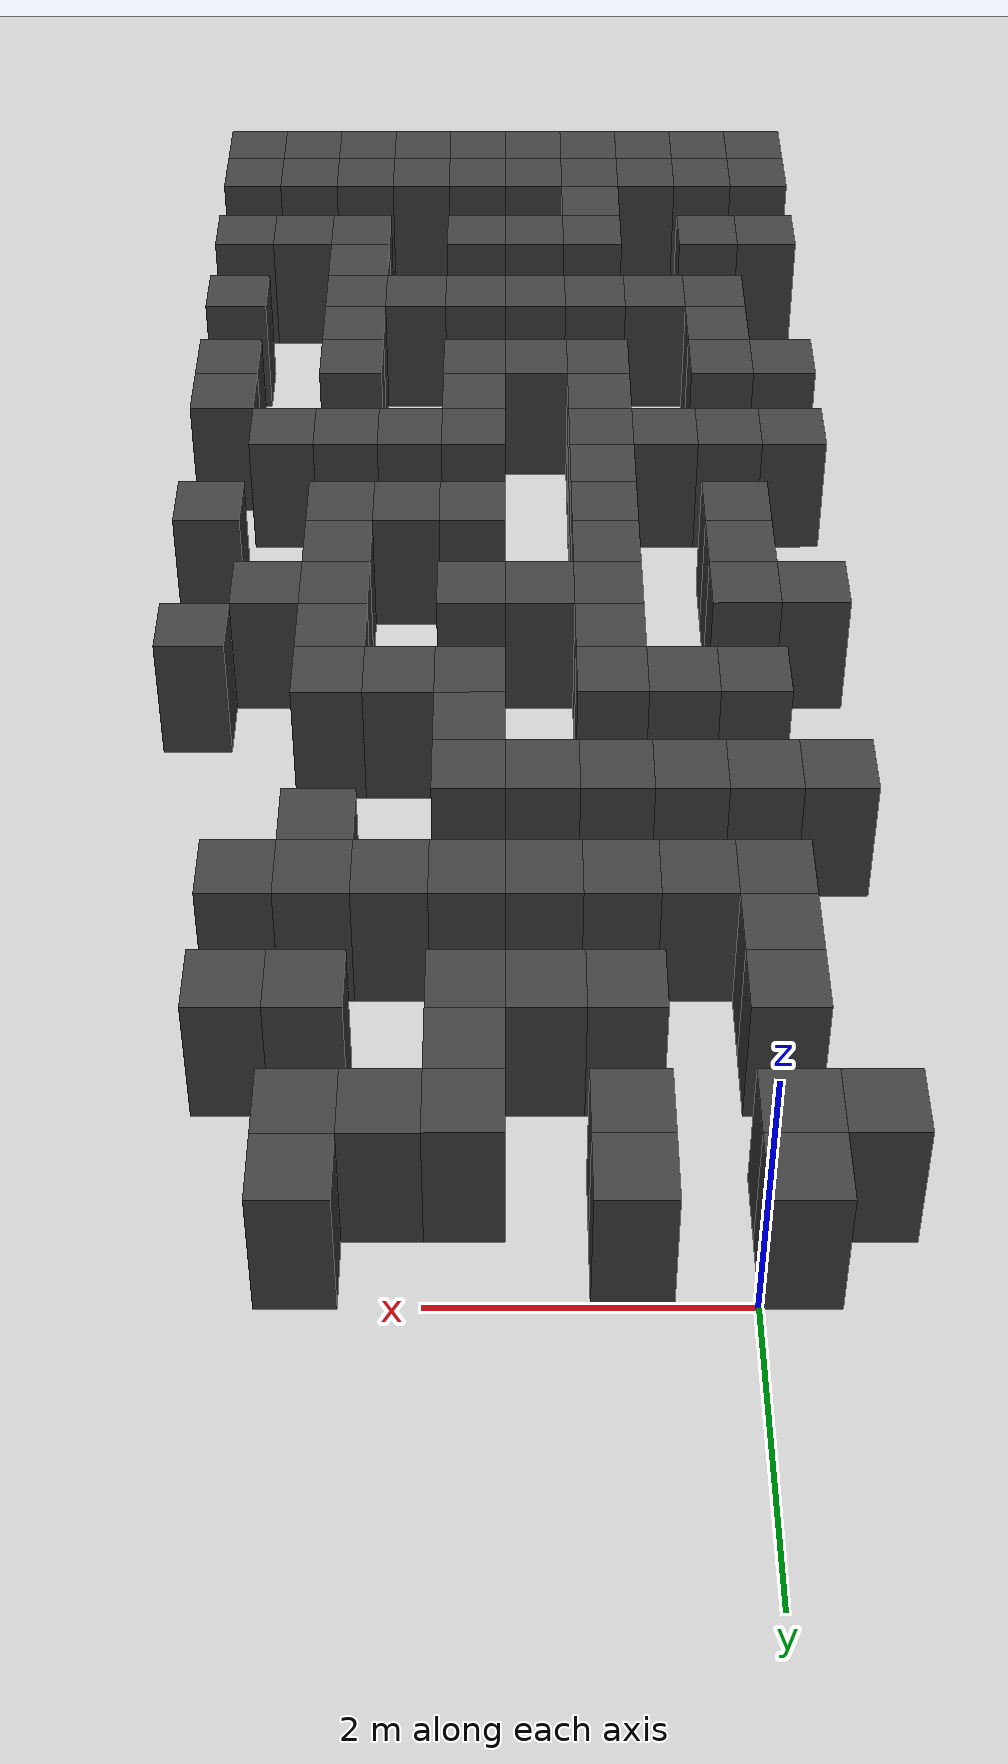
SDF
<sdf version="1.7">
 <world name="map_18228">
  <model name="ground_plane">
   <static>true</static>
   <link name="link">
    <collision name="collision">
     <geometry><plane><normal>0 0 1</normal><size>200 200</size></plane></geometry>
    </collision>
    <visual name="visual">
     <geometry><plane><normal>0 0 1</normal><size>200 200</size></plane></geometry>
     <material><ambient>0.8 0.8 0.8 1</ambient><diffuse>0.8 0.8 0.8 1</diffuse></material>
    </visual>
   </link>
  </model>
  <model name="maze_environment">
   <static>true</static>
   <link name="wall_643">
    <pose>-0.250 -0.250 0.500 0 0 0</pose>
    <collision name="col"><geometry><box><size>0.5 0.5 1.0</size></box></geometry></collision>
    <visual name="vis">
     <geometry><box><size>0.5 0.5 1.0</size></box></geometry>
     <material><ambient>0.15 0.15 0.15 1</ambient><diffuse>0.25 0.25 0.25 1</diffuse></material>
    </visual>
   </link>
   <link name="wall_644">
    <pose>0.750 -0.250 0.500 0 0 0</pose>
    <collision name="col"><geometry><box><size>0.5 0.5 1.0</size></box></geometry></collision>
    <visual name="vis">
     <geometry><box><size>0.5 0.5 1.0</size></box></geometry>
     <material><ambient>0.15 0.15 0.15 1</ambient><diffuse>0.25 0.25 0.25 1</diffuse></material>
    </visual>
   </link>
   <link name="wall_645">
    <pose>2.750 -0.250 0.500 0 0 0</pose>
    <collision name="col"><geometry><box><size>0.5 0.5 1.0</size></box></geometry></collision>
    <visual name="vis">
     <geometry><box><size>0.5 0.5 1.0</size></box></geometry>
     <material><ambient>0.15 0.15 0.15 1</ambient><diffuse>0.25 0.25 0.25 1</diffuse></material>
    </visual>
   </link>
   <link name="wall_668">
    <pose>-0.750 -0.750 0.500 0 0 0</pose>
    <collision name="col"><geometry><box><size>0.5 0.5 1.0</size></box></geometry></collision>
    <visual name="vis">
     <geometry><box><size>0.5 0.5 1.0</size></box></geometry>
     <material><ambient>0.15 0.15 0.15 1</ambient><diffuse>0.25 0.25 0.25 1</diffuse></material>
    </visual>
   </link>
   <link name="wall_669">
    <pose>-0.250 -0.750 0.500 0 0 0</pose>
    <collision name="col"><geometry><box><size>0.5 0.5 1.0</size></box></geometry></collision>
    <visual name="vis">
     <geometry><box><size>0.5 0.5 1.0</size></box></geometry>
     <material><ambient>0.15 0.15 0.15 1</ambient><diffuse>0.25 0.25 0.25 1</diffuse></material>
    </visual>
   </link>
   <link name="wall_670">
    <pose>0.750 -0.750 0.500 0 0 0</pose>
    <collision name="col"><geometry><box><size>0.5 0.5 1.0</size></box></geometry></collision>
    <visual name="vis">
     <geometry><box><size>0.5 0.5 1.0</size></box></geometry>
     <material><ambient>0.15 0.15 0.15 1</ambient><diffuse>0.25 0.25 0.25 1</diffuse></material>
    </visual>
   </link>
   <link name="wall_671">
    <pose>1.750 -0.750 0.500 0 0 0</pose>
    <collision name="col"><geometry><box><size>0.5 0.5 1.0</size></box></geometry></collision>
    <visual name="vis">
     <geometry><box><size>0.5 0.5 1.0</size></box></geometry>
     <material><ambient>0.15 0.15 0.15 1</ambient><diffuse>0.25 0.25 0.25 1</diffuse></material>
    </visual>
   </link>
   <link name="wall_672">
    <pose>2.250 -0.750 0.500 0 0 0</pose>
    <collision name="col"><geometry><box><size>0.5 0.5 1.0</size></box></geometry></collision>
    <visual name="vis">
     <geometry><box><size>0.5 0.5 1.0</size></box></geometry>
     <material><ambient>0.15 0.15 0.15 1</ambient><diffuse>0.25 0.25 0.25 1</diffuse></material>
    </visual>
   </link>
   <link name="wall_673">
    <pose>2.750 -0.750 0.500 0 0 0</pose>
    <collision name="col"><geometry><box><size>0.5 0.5 1.0</size></box></geometry></collision>
    <visual name="vis">
     <geometry><box><size>0.5 0.5 1.0</size></box></geometry>
     <material><ambient>0.15 0.15 0.15 1</ambient><diffuse>0.25 0.25 0.25 1</diffuse></material>
    </visual>
   </link>
   <link name="wall_693">
    <pose>1.750 -1.250 0.500 0 0 0</pose>
    <collision name="col"><geometry><box><size>0.5 0.5 1.0</size></box></geometry></collision>
    <visual name="vis">
     <geometry><box><size>0.5 0.5 1.0</size></box></geometry>
     <material><ambient>0.15 0.15 0.15 1</ambient><diffuse>0.25 0.25 0.25 1</diffuse></material>
    </visual>
   </link>
   <link name="wall_716">
    <pose>-0.250 -1.750 0.500 0 0 0</pose>
    <collision name="col"><geometry><box><size>0.5 0.5 1.0</size></box></geometry></collision>
    <visual name="vis">
     <geometry><box><size>0.5 0.5 1.0</size></box></geometry>
     <material><ambient>0.15 0.15 0.15 1</ambient><diffuse>0.25 0.25 0.25 1</diffuse></material>
    </visual>
   </link>
   <link name="wall_717">
    <pose>0.750 -1.750 0.500 0 0 0</pose>
    <collision name="col"><geometry><box><size>0.5 0.5 1.0</size></box></geometry></collision>
    <visual name="vis">
     <geometry><box><size>0.5 0.5 1.0</size></box></geometry>
     <material><ambient>0.15 0.15 0.15 1</ambient><diffuse>0.25 0.25 0.25 1</diffuse></material>
    </visual>
   </link>
   <link name="wall_718">
    <pose>1.250 -1.750 0.500 0 0 0</pose>
    <collision name="col"><geometry><box><size>0.5 0.5 1.0</size></box></geometry></collision>
    <visual name="vis">
     <geometry><box><size>0.5 0.5 1.0</size></box></geometry>
     <material><ambient>0.15 0.15 0.15 1</ambient><diffuse>0.25 0.25 0.25 1</diffuse></material>
    </visual>
   </link>
   <link name="wall_719">
    <pose>1.750 -1.750 0.500 0 0 0</pose>
    <collision name="col"><geometry><box><size>0.5 0.5 1.0</size></box></geometry></collision>
    <visual name="vis">
     <geometry><box><size>0.5 0.5 1.0</size></box></geometry>
     <material><ambient>0.15 0.15 0.15 1</ambient><diffuse>0.25 0.25 0.25 1</diffuse></material>
    </visual>
   </link>
   <link name="wall_720">
    <pose>2.750 -1.750 0.500 0 0 0</pose>
    <collision name="col"><geometry><box><size>0.5 0.5 1.0</size></box></geometry></collision>
    <visual name="vis">
     <geometry><box><size>0.5 0.5 1.0</size></box></geometry>
     <material><ambient>0.15 0.15 0.15 1</ambient><diffuse>0.25 0.25 0.25 1</diffuse></material>
    </visual>
   </link>
   <link name="wall_721">
    <pose>3.250 -1.750 0.500 0 0 0</pose>
    <collision name="col"><geometry><box><size>0.5 0.5 1.0</size></box></geometry></collision>
    <visual name="vis">
     <geometry><box><size>0.5 0.5 1.0</size></box></geometry>
     <material><ambient>0.15 0.15 0.15 1</ambient><diffuse>0.25 0.25 0.25 1</diffuse></material>
    </visual>
   </link>
   <link name="wall_746">
    <pose>-0.250 -2.250 0.500 0 0 0</pose>
    <collision name="col"><geometry><box><size>0.5 0.5 1.0</size></box></geometry></collision>
    <visual name="vis">
     <geometry><box><size>0.5 0.5 1.0</size></box></geometry>
     <material><ambient>0.15 0.15 0.15 1</ambient><diffuse>0.25 0.25 0.25 1</diffuse></material>
    </visual>
   </link>
   <link name="wall_765">
    <pose>-0.250 -2.750 0.500 0 0 0</pose>
    <collision name="col"><geometry><box><size>0.5 0.5 1.0</size></box></geometry></collision>
    <visual name="vis">
     <geometry><box><size>0.5 0.5 1.0</size></box></geometry>
     <material><ambient>0.15 0.15 0.15 1</ambient><diffuse>0.25 0.25 0.25 1</diffuse></material>
    </visual>
   </link>
   <link name="wall_766">
    <pose>0.250 -2.750 0.500 0 0 0</pose>
    <collision name="col"><geometry><box><size>0.5 0.5 1.0</size></box></geometry></collision>
    <visual name="vis">
     <geometry><box><size>0.5 0.5 1.0</size></box></geometry>
     <material><ambient>0.15 0.15 0.15 1</ambient><diffuse>0.25 0.25 0.25 1</diffuse></material>
    </visual>
   </link>
   <link name="wall_767">
    <pose>0.750 -2.750 0.500 0 0 0</pose>
    <collision name="col"><geometry><box><size>0.5 0.5 1.0</size></box></geometry></collision>
    <visual name="vis">
     <geometry><box><size>0.5 0.5 1.0</size></box></geometry>
     <material><ambient>0.15 0.15 0.15 1</ambient><diffuse>0.25 0.25 0.25 1</diffuse></material>
    </visual>
   </link>
   <link name="wall_768">
    <pose>1.250 -2.750 0.500 0 0 0</pose>
    <collision name="col"><geometry><box><size>0.5 0.5 1.0</size></box></geometry></collision>
    <visual name="vis">
     <geometry><box><size>0.5 0.5 1.0</size></box></geometry>
     <material><ambient>0.15 0.15 0.15 1</ambient><diffuse>0.25 0.25 0.25 1</diffuse></material>
    </visual>
   </link>
   <link name="wall_769">
    <pose>1.750 -2.750 0.500 0 0 0</pose>
    <collision name="col"><geometry><box><size>0.5 0.5 1.0</size></box></geometry></collision>
    <visual name="vis">
     <geometry><box><size>0.5 0.5 1.0</size></box></geometry>
     <material><ambient>0.15 0.15 0.15 1</ambient><diffuse>0.25 0.25 0.25 1</diffuse></material>
    </visual>
   </link>
   <link name="wall_770">
    <pose>2.250 -2.750 0.500 0 0 0</pose>
    <collision name="col"><geometry><box><size>0.5 0.5 1.0</size></box></geometry></collision>
    <visual name="vis">
     <geometry><box><size>0.5 0.5 1.0</size></box></geometry>
     <material><ambient>0.15 0.15 0.15 1</ambient><diffuse>0.25 0.25 0.25 1</diffuse></material>
    </visual>
   </link>
   <link name="wall_771">
    <pose>2.750 -2.750 0.500 0 0 0</pose>
    <collision name="col"><geometry><box><size>0.5 0.5 1.0</size></box></geometry></collision>
    <visual name="vis">
     <geometry><box><size>0.5 0.5 1.0</size></box></geometry>
     <material><ambient>0.15 0.15 0.15 1</ambient><diffuse>0.25 0.25 0.25 1</diffuse></material>
    </visual>
   </link>
   <link name="wall_772">
    <pose>3.250 -2.750 0.500 0 0 0</pose>
    <collision name="col"><geometry><box><size>0.5 0.5 1.0</size></box></geometry></collision>
    <visual name="vis">
     <geometry><box><size>0.5 0.5 1.0</size></box></geometry>
     <material><ambient>0.15 0.15 0.15 1</ambient><diffuse>0.25 0.25 0.25 1</diffuse></material>
    </visual>
   </link>
   <link name="wall_790">
    <pose>2.750 -3.250 0.500 0 0 0</pose>
    <collision name="col"><geometry><box><size>0.5 0.5 1.0</size></box></geometry></collision>
    <visual name="vis">
     <geometry><box><size>0.5 0.5 1.0</size></box></geometry>
     <material><ambient>0.15 0.15 0.15 1</ambient><diffuse>0.25 0.25 0.25 1</diffuse></material>
    </visual>
   </link>
   <link name="wall_814">
    <pose>-0.750 -3.750 0.500 0 0 0</pose>
    <collision name="col"><geometry><box><size>0.5 0.5 1.0</size></box></geometry></collision>
    <visual name="vis">
     <geometry><box><size>0.5 0.5 1.0</size></box></geometry>
     <material><ambient>0.15 0.15 0.15 1</ambient><diffuse>0.25 0.25 0.25 1</diffuse></material>
    </visual>
   </link>
   <link name="wall_815">
    <pose>-0.250 -3.750 0.500 0 0 0</pose>
    <collision name="col"><geometry><box><size>0.5 0.5 1.0</size></box></geometry></collision>
    <visual name="vis">
     <geometry><box><size>0.5 0.5 1.0</size></box></geometry>
     <material><ambient>0.15 0.15 0.15 1</ambient><diffuse>0.25 0.25 0.25 1</diffuse></material>
    </visual>
   </link>
   <link name="wall_816">
    <pose>0.250 -3.750 0.500 0 0 0</pose>
    <collision name="col"><geometry><box><size>0.5 0.5 1.0</size></box></geometry></collision>
    <visual name="vis">
     <geometry><box><size>0.5 0.5 1.0</size></box></geometry>
     <material><ambient>0.15 0.15 0.15 1</ambient><diffuse>0.25 0.25 0.25 1</diffuse></material>
    </visual>
   </link>
   <link name="wall_817">
    <pose>0.750 -3.750 0.500 0 0 0</pose>
    <collision name="col"><geometry><box><size>0.5 0.5 1.0</size></box></geometry></collision>
    <visual name="vis">
     <geometry><box><size>0.5 0.5 1.0</size></box></geometry>
     <material><ambient>0.15 0.15 0.15 1</ambient><diffuse>0.25 0.25 0.25 1</diffuse></material>
    </visual>
   </link>
   <link name="wall_818">
    <pose>1.250 -3.750 0.500 0 0 0</pose>
    <collision name="col"><geometry><box><size>0.5 0.5 1.0</size></box></geometry></collision>
    <visual name="vis">
     <geometry><box><size>0.5 0.5 1.0</size></box></geometry>
     <material><ambient>0.15 0.15 0.15 1</ambient><diffuse>0.25 0.25 0.25 1</diffuse></material>
    </visual>
   </link>
   <link name="wall_819">
    <pose>1.750 -3.750 0.500 0 0 0</pose>
    <collision name="col"><geometry><box><size>0.5 0.5 1.0</size></box></geometry></collision>
    <visual name="vis">
     <geometry><box><size>0.5 0.5 1.0</size></box></geometry>
     <material><ambient>0.15 0.15 0.15 1</ambient><diffuse>0.25 0.25 0.25 1</diffuse></material>
    </visual>
   </link>
   <link name="wall_841">
    <pose>1.750 -4.250 0.500 0 0 0</pose>
    <collision name="col"><geometry><box><size>0.5 0.5 1.0</size></box></geometry></collision>
    <visual name="vis">
     <geometry><box><size>0.5 0.5 1.0</size></box></geometry>
     <material><ambient>0.15 0.15 0.15 1</ambient><diffuse>0.25 0.25 0.25 1</diffuse></material>
    </visual>
   </link>
   <link name="wall_862">
    <pose>-0.250 -4.750 0.500 0 0 0</pose>
    <collision name="col"><geometry><box><size>0.5 0.5 1.0</size></box></geometry></collision>
    <visual name="vis">
     <geometry><box><size>0.5 0.5 1.0</size></box></geometry>
     <material><ambient>0.15 0.15 0.15 1</ambient><diffuse>0.25 0.25 0.25 1</diffuse></material>
    </visual>
   </link>
   <link name="wall_863">
    <pose>0.250 -4.750 0.500 0 0 0</pose>
    <collision name="col"><geometry><box><size>0.5 0.5 1.0</size></box></geometry></collision>
    <visual name="vis">
     <geometry><box><size>0.5 0.5 1.0</size></box></geometry>
     <material><ambient>0.15 0.15 0.15 1</ambient><diffuse>0.25 0.25 0.25 1</diffuse></material>
    </visual>
   </link>
   <link name="wall_864">
    <pose>0.750 -4.750 0.500 0 0 0</pose>
    <collision name="col"><geometry><box><size>0.5 0.5 1.0</size></box></geometry></collision>
    <visual name="vis">
     <geometry><box><size>0.5 0.5 1.0</size></box></geometry>
     <material><ambient>0.15 0.15 0.15 1</ambient><diffuse>0.25 0.25 0.25 1</diffuse></material>
    </visual>
   </link>
   <link name="wall_865">
    <pose>1.750 -4.750 0.500 0 0 0</pose>
    <collision name="col"><geometry><box><size>0.5 0.5 1.0</size></box></geometry></collision>
    <visual name="vis">
     <geometry><box><size>0.5 0.5 1.0</size></box></geometry>
     <material><ambient>0.15 0.15 0.15 1</ambient><diffuse>0.25 0.25 0.25 1</diffuse></material>
    </visual>
   </link>
   <link name="wall_866">
    <pose>2.250 -4.750 0.500 0 0 0</pose>
    <collision name="col"><geometry><box><size>0.5 0.5 1.0</size></box></geometry></collision>
    <visual name="vis">
     <geometry><box><size>0.5 0.5 1.0</size></box></geometry>
     <material><ambient>0.15 0.15 0.15 1</ambient><diffuse>0.25 0.25 0.25 1</diffuse></material>
    </visual>
   </link>
   <link name="wall_867">
    <pose>2.750 -4.750 0.500 0 0 0</pose>
    <collision name="col"><geometry><box><size>0.5 0.5 1.0</size></box></geometry></collision>
    <visual name="vis">
     <geometry><box><size>0.5 0.5 1.0</size></box></geometry>
     <material><ambient>0.15 0.15 0.15 1</ambient><diffuse>0.25 0.25 0.25 1</diffuse></material>
    </visual>
   </link>
   <link name="wall_887">
    <pose>0.750 -5.250 0.500 0 0 0</pose>
    <collision name="col"><geometry><box><size>0.5 0.5 1.0</size></box></geometry></collision>
    <visual name="vis">
     <geometry><box><size>0.5 0.5 1.0</size></box></geometry>
     <material><ambient>0.15 0.15 0.15 1</ambient><diffuse>0.25 0.25 0.25 1</diffuse></material>
    </visual>
   </link>
   <link name="wall_888">
    <pose>2.750 -5.250 0.500 0 0 0</pose>
    <collision name="col"><geometry><box><size>0.5 0.5 1.0</size></box></geometry></collision>
    <visual name="vis">
     <geometry><box><size>0.5 0.5 1.0</size></box></geometry>
     <material><ambient>0.15 0.15 0.15 1</ambient><diffuse>0.25 0.25 0.25 1</diffuse></material>
    </visual>
   </link>
   <link name="wall_889">
    <pose>3.750 -5.250 0.500 0 0 0</pose>
    <collision name="col"><geometry><box><size>0.5 0.5 1.0</size></box></geometry></collision>
    <visual name="vis">
     <geometry><box><size>0.5 0.5 1.0</size></box></geometry>
     <material><ambient>0.15 0.15 0.15 1</ambient><diffuse>0.25 0.25 0.25 1</diffuse></material>
    </visual>
   </link>
   <link name="wall_916">
    <pose>-0.750 -5.750 0.500 0 0 0</pose>
    <collision name="col"><geometry><box><size>0.5 0.5 1.0</size></box></geometry></collision>
    <visual name="vis">
     <geometry><box><size>0.5 0.5 1.0</size></box></geometry>
     <material><ambient>0.15 0.15 0.15 1</ambient><diffuse>0.25 0.25 0.25 1</diffuse></material>
    </visual>
   </link>
   <link name="wall_917">
    <pose>-0.250 -5.750 0.500 0 0 0</pose>
    <collision name="col"><geometry><box><size>0.5 0.5 1.0</size></box></geometry></collision>
    <visual name="vis">
     <geometry><box><size>0.5 0.5 1.0</size></box></geometry>
     <material><ambient>0.15 0.15 0.15 1</ambient><diffuse>0.25 0.25 0.25 1</diffuse></material>
    </visual>
   </link>
   <link name="wall_918">
    <pose>0.750 -5.750 0.500 0 0 0</pose>
    <collision name="col"><geometry><box><size>0.5 0.5 1.0</size></box></geometry></collision>
    <visual name="vis">
     <geometry><box><size>0.5 0.5 1.0</size></box></geometry>
     <material><ambient>0.15 0.15 0.15 1</ambient><diffuse>0.25 0.25 0.25 1</diffuse></material>
    </visual>
   </link>
   <link name="wall_919">
    <pose>1.250 -5.750 0.500 0 0 0</pose>
    <collision name="col"><geometry><box><size>0.5 0.5 1.0</size></box></geometry></collision>
    <visual name="vis">
     <geometry><box><size>0.5 0.5 1.0</size></box></geometry>
     <material><ambient>0.15 0.15 0.15 1</ambient><diffuse>0.25 0.25 0.25 1</diffuse></material>
    </visual>
   </link>
   <link name="wall_920">
    <pose>1.750 -5.750 0.500 0 0 0</pose>
    <collision name="col"><geometry><box><size>0.5 0.5 1.0</size></box></geometry></collision>
    <visual name="vis">
     <geometry><box><size>0.5 0.5 1.0</size></box></geometry>
     <material><ambient>0.15 0.15 0.15 1</ambient><diffuse>0.25 0.25 0.25 1</diffuse></material>
    </visual>
   </link>
   <link name="wall_921">
    <pose>2.750 -5.750 0.500 0 0 0</pose>
    <collision name="col"><geometry><box><size>0.5 0.5 1.0</size></box></geometry></collision>
    <visual name="vis">
     <geometry><box><size>0.5 0.5 1.0</size></box></geometry>
     <material><ambient>0.15 0.15 0.15 1</ambient><diffuse>0.25 0.25 0.25 1</diffuse></material>
    </visual>
   </link>
   <link name="wall_922">
    <pose>3.250 -5.750 0.500 0 0 0</pose>
    <collision name="col"><geometry><box><size>0.5 0.5 1.0</size></box></geometry></collision>
    <visual name="vis">
     <geometry><box><size>0.5 0.5 1.0</size></box></geometry>
     <material><ambient>0.15 0.15 0.15 1</ambient><diffuse>0.25 0.25 0.25 1</diffuse></material>
    </visual>
   </link>
   <link name="wall_941">
    <pose>-0.250 -6.250 0.500 0 0 0</pose>
    <collision name="col"><geometry><box><size>0.5 0.5 1.0</size></box></geometry></collision>
    <visual name="vis">
     <geometry><box><size>0.5 0.5 1.0</size></box></geometry>
     <material><ambient>0.15 0.15 0.15 1</ambient><diffuse>0.25 0.25 0.25 1</diffuse></material>
    </visual>
   </link>
   <link name="wall_942">
    <pose>0.750 -6.250 0.500 0 0 0</pose>
    <collision name="col"><geometry><box><size>0.5 0.5 1.0</size></box></geometry></collision>
    <visual name="vis">
     <geometry><box><size>0.5 0.5 1.0</size></box></geometry>
     <material><ambient>0.15 0.15 0.15 1</ambient><diffuse>0.25 0.25 0.25 1</diffuse></material>
    </visual>
   </link>
   <link name="wall_943">
    <pose>2.750 -6.250 0.500 0 0 0</pose>
    <collision name="col"><geometry><box><size>0.5 0.5 1.0</size></box></geometry></collision>
    <visual name="vis">
     <geometry><box><size>0.5 0.5 1.0</size></box></geometry>
     <material><ambient>0.15 0.15 0.15 1</ambient><diffuse>0.25 0.25 0.25 1</diffuse></material>
    </visual>
   </link>
   <link name="wall_964">
    <pose>-0.250 -6.750 0.500 0 0 0</pose>
    <collision name="col"><geometry><box><size>0.5 0.5 1.0</size></box></geometry></collision>
    <visual name="vis">
     <geometry><box><size>0.5 0.5 1.0</size></box></geometry>
     <material><ambient>0.15 0.15 0.15 1</ambient><diffuse>0.25 0.25 0.25 1</diffuse></material>
    </visual>
   </link>
   <link name="wall_965">
    <pose>0.750 -6.750 0.500 0 0 0</pose>
    <collision name="col"><geometry><box><size>0.5 0.5 1.0</size></box></geometry></collision>
    <visual name="vis">
     <geometry><box><size>0.5 0.5 1.0</size></box></geometry>
     <material><ambient>0.15 0.15 0.15 1</ambient><diffuse>0.25 0.25 0.25 1</diffuse></material>
    </visual>
   </link>
   <link name="wall_966">
    <pose>1.750 -6.750 0.500 0 0 0</pose>
    <collision name="col"><geometry><box><size>0.5 0.5 1.0</size></box></geometry></collision>
    <visual name="vis">
     <geometry><box><size>0.5 0.5 1.0</size></box></geometry>
     <material><ambient>0.15 0.15 0.15 1</ambient><diffuse>0.25 0.25 0.25 1</diffuse></material>
    </visual>
   </link>
   <link name="wall_967">
    <pose>2.250 -6.750 0.500 0 0 0</pose>
    <collision name="col"><geometry><box><size>0.5 0.5 1.0</size></box></geometry></collision>
    <visual name="vis">
     <geometry><box><size>0.5 0.5 1.0</size></box></geometry>
     <material><ambient>0.15 0.15 0.15 1</ambient><diffuse>0.25 0.25 0.25 1</diffuse></material>
    </visual>
   </link>
   <link name="wall_968">
    <pose>2.750 -6.750 0.500 0 0 0</pose>
    <collision name="col"><geometry><box><size>0.5 0.5 1.0</size></box></geometry></collision>
    <visual name="vis">
     <geometry><box><size>0.5 0.5 1.0</size></box></geometry>
     <material><ambient>0.15 0.15 0.15 1</ambient><diffuse>0.25 0.25 0.25 1</diffuse></material>
    </visual>
   </link>
   <link name="wall_969">
    <pose>3.750 -6.750 0.500 0 0 0</pose>
    <collision name="col"><geometry><box><size>0.5 0.5 1.0</size></box></geometry></collision>
    <visual name="vis">
     <geometry><box><size>0.5 0.5 1.0</size></box></geometry>
     <material><ambient>0.15 0.15 0.15 1</ambient><diffuse>0.25 0.25 0.25 1</diffuse></material>
    </visual>
   </link>
   <link name="wall_989">
    <pose>0.750 -7.250 0.500 0 0 0</pose>
    <collision name="col"><geometry><box><size>0.5 0.5 1.0</size></box></geometry></collision>
    <visual name="vis">
     <geometry><box><size>0.5 0.5 1.0</size></box></geometry>
     <material><ambient>0.15 0.15 0.15 1</ambient><diffuse>0.25 0.25 0.25 1</diffuse></material>
    </visual>
   </link>
   <link name="wall_1015">
    <pose>-0.750 -7.750 0.500 0 0 0</pose>
    <collision name="col"><geometry><box><size>0.5 0.5 1.0</size></box></geometry></collision>
    <visual name="vis">
     <geometry><box><size>0.5 0.5 1.0</size></box></geometry>
     <material><ambient>0.15 0.15 0.15 1</ambient><diffuse>0.25 0.25 0.25 1</diffuse></material>
    </visual>
   </link>
   <link name="wall_1016">
    <pose>-0.250 -7.750 0.500 0 0 0</pose>
    <collision name="col"><geometry><box><size>0.5 0.5 1.0</size></box></geometry></collision>
    <visual name="vis">
     <geometry><box><size>0.5 0.5 1.0</size></box></geometry>
     <material><ambient>0.15 0.15 0.15 1</ambient><diffuse>0.25 0.25 0.25 1</diffuse></material>
    </visual>
   </link>
   <link name="wall_1017">
    <pose>0.250 -7.750 0.500 0 0 0</pose>
    <collision name="col"><geometry><box><size>0.5 0.5 1.0</size></box></geometry></collision>
    <visual name="vis">
     <geometry><box><size>0.5 0.5 1.0</size></box></geometry>
     <material><ambient>0.15 0.15 0.15 1</ambient><diffuse>0.25 0.25 0.25 1</diffuse></material>
    </visual>
   </link>
   <link name="wall_1018">
    <pose>0.750 -7.750 0.500 0 0 0</pose>
    <collision name="col"><geometry><box><size>0.5 0.5 1.0</size></box></geometry></collision>
    <visual name="vis">
     <geometry><box><size>0.5 0.5 1.0</size></box></geometry>
     <material><ambient>0.15 0.15 0.15 1</ambient><diffuse>0.25 0.25 0.25 1</diffuse></material>
    </visual>
   </link>
   <link name="wall_1019">
    <pose>1.750 -7.750 0.500 0 0 0</pose>
    <collision name="col"><geometry><box><size>0.5 0.5 1.0</size></box></geometry></collision>
    <visual name="vis">
     <geometry><box><size>0.5 0.5 1.0</size></box></geometry>
     <material><ambient>0.15 0.15 0.15 1</ambient><diffuse>0.25 0.25 0.25 1</diffuse></material>
    </visual>
   </link>
   <link name="wall_1020">
    <pose>2.250 -7.750 0.500 0 0 0</pose>
    <collision name="col"><geometry><box><size>0.5 0.5 1.0</size></box></geometry></collision>
    <visual name="vis">
     <geometry><box><size>0.5 0.5 1.0</size></box></geometry>
     <material><ambient>0.15 0.15 0.15 1</ambient><diffuse>0.25 0.25 0.25 1</diffuse></material>
    </visual>
   </link>
   <link name="wall_1021">
    <pose>2.750 -7.750 0.500 0 0 0</pose>
    <collision name="col"><geometry><box><size>0.5 0.5 1.0</size></box></geometry></collision>
    <visual name="vis">
     <geometry><box><size>0.5 0.5 1.0</size></box></geometry>
     <material><ambient>0.15 0.15 0.15 1</ambient><diffuse>0.25 0.25 0.25 1</diffuse></material>
    </visual>
   </link>
   <link name="wall_1022">
    <pose>3.250 -7.750 0.500 0 0 0</pose>
    <collision name="col"><geometry><box><size>0.5 0.5 1.0</size></box></geometry></collision>
    <visual name="vis">
     <geometry><box><size>0.5 0.5 1.0</size></box></geometry>
     <material><ambient>0.15 0.15 0.15 1</ambient><diffuse>0.25 0.25 0.25 1</diffuse></material>
    </visual>
   </link>
   <link name="wall_1039">
    <pose>0.750 -8.250 0.500 0 0 0</pose>
    <collision name="col"><geometry><box><size>0.5 0.5 1.0</size></box></geometry></collision>
    <visual name="vis">
     <geometry><box><size>0.5 0.5 1.0</size></box></geometry>
     <material><ambient>0.15 0.15 0.15 1</ambient><diffuse>0.25 0.25 0.25 1</diffuse></material>
    </visual>
   </link>
   <link name="wall_1040">
    <pose>1.750 -8.250 0.500 0 0 0</pose>
    <collision name="col"><geometry><box><size>0.5 0.5 1.0</size></box></geometry></collision>
    <visual name="vis">
     <geometry><box><size>0.5 0.5 1.0</size></box></geometry>
     <material><ambient>0.15 0.15 0.15 1</ambient><diffuse>0.25 0.25 0.25 1</diffuse></material>
    </visual>
   </link>
   <link name="wall_1041">
    <pose>3.750 -8.250 0.500 0 0 0</pose>
    <collision name="col"><geometry><box><size>0.5 0.5 1.0</size></box></geometry></collision>
    <visual name="vis">
     <geometry><box><size>0.5 0.5 1.0</size></box></geometry>
     <material><ambient>0.15 0.15 0.15 1</ambient><diffuse>0.25 0.25 0.25 1</diffuse></material>
    </visual>
   </link>
   <link name="wall_1065">
    <pose>-0.750 -8.750 0.500 0 0 0</pose>
    <collision name="col"><geometry><box><size>0.5 0.5 1.0</size></box></geometry></collision>
    <visual name="vis">
     <geometry><box><size>0.5 0.5 1.0</size></box></geometry>
     <material><ambient>0.15 0.15 0.15 1</ambient><diffuse>0.25 0.25 0.25 1</diffuse></material>
    </visual>
   </link>
   <link name="wall_1066">
    <pose>-0.250 -8.750 0.500 0 0 0</pose>
    <collision name="col"><geometry><box><size>0.5 0.5 1.0</size></box></geometry></collision>
    <visual name="vis">
     <geometry><box><size>0.5 0.5 1.0</size></box></geometry>
     <material><ambient>0.15 0.15 0.15 1</ambient><diffuse>0.25 0.25 0.25 1</diffuse></material>
    </visual>
   </link>
   <link name="wall_1067">
    <pose>0.750 -8.750 0.500 0 0 0</pose>
    <collision name="col"><geometry><box><size>0.5 0.5 1.0</size></box></geometry></collision>
    <visual name="vis">
     <geometry><box><size>0.5 0.5 1.0</size></box></geometry>
     <material><ambient>0.15 0.15 0.15 1</ambient><diffuse>0.25 0.25 0.25 1</diffuse></material>
    </visual>
   </link>
   <link name="wall_1068">
    <pose>1.250 -8.750 0.500 0 0 0</pose>
    <collision name="col"><geometry><box><size>0.5 0.5 1.0</size></box></geometry></collision>
    <visual name="vis">
     <geometry><box><size>0.5 0.5 1.0</size></box></geometry>
     <material><ambient>0.15 0.15 0.15 1</ambient><diffuse>0.25 0.25 0.25 1</diffuse></material>
    </visual>
   </link>
   <link name="wall_1069">
    <pose>1.750 -8.750 0.500 0 0 0</pose>
    <collision name="col"><geometry><box><size>0.5 0.5 1.0</size></box></geometry></collision>
    <visual name="vis">
     <geometry><box><size>0.5 0.5 1.0</size></box></geometry>
     <material><ambient>0.15 0.15 0.15 1</ambient><diffuse>0.25 0.25 0.25 1</diffuse></material>
    </visual>
   </link>
   <link name="wall_1070">
    <pose>2.750 -8.750 0.500 0 0 0</pose>
    <collision name="col"><geometry><box><size>0.5 0.5 1.0</size></box></geometry></collision>
    <visual name="vis">
     <geometry><box><size>0.5 0.5 1.0</size></box></geometry>
     <material><ambient>0.15 0.15 0.15 1</ambient><diffuse>0.25 0.25 0.25 1</diffuse></material>
    </visual>
   </link>
   <link name="wall_1071">
    <pose>3.750 -8.750 0.500 0 0 0</pose>
    <collision name="col"><geometry><box><size>0.5 0.5 1.0</size></box></geometry></collision>
    <visual name="vis">
     <geometry><box><size>0.5 0.5 1.0</size></box></geometry>
     <material><ambient>0.15 0.15 0.15 1</ambient><diffuse>0.25 0.25 0.25 1</diffuse></material>
    </visual>
   </link>
   <link name="wall_1090">
    <pose>-0.250 -9.250 0.500 0 0 0</pose>
    <collision name="col"><geometry><box><size>0.5 0.5 1.0</size></box></geometry></collision>
    <visual name="vis">
     <geometry><box><size>0.5 0.5 1.0</size></box></geometry>
     <material><ambient>0.15 0.15 0.15 1</ambient><diffuse>0.25 0.25 0.25 1</diffuse></material>
    </visual>
   </link>
   <link name="wall_1091">
    <pose>2.750 -9.250 0.500 0 0 0</pose>
    <collision name="col"><geometry><box><size>0.5 0.5 1.0</size></box></geometry></collision>
    <visual name="vis">
     <geometry><box><size>0.5 0.5 1.0</size></box></geometry>
     <material><ambient>0.15 0.15 0.15 1</ambient><diffuse>0.25 0.25 0.25 1</diffuse></material>
    </visual>
   </link>
   <link name="wall_1113">
    <pose>-0.250 -9.750 0.500 0 0 0</pose>
    <collision name="col"><geometry><box><size>0.5 0.5 1.0</size></box></geometry></collision>
    <visual name="vis">
     <geometry><box><size>0.5 0.5 1.0</size></box></geometry>
     <material><ambient>0.15 0.15 0.15 1</ambient><diffuse>0.25 0.25 0.25 1</diffuse></material>
    </visual>
   </link>
   <link name="wall_1114">
    <pose>0.250 -9.750 0.500 0 0 0</pose>
    <collision name="col"><geometry><box><size>0.5 0.5 1.0</size></box></geometry></collision>
    <visual name="vis">
     <geometry><box><size>0.5 0.5 1.0</size></box></geometry>
     <material><ambient>0.15 0.15 0.15 1</ambient><diffuse>0.25 0.25 0.25 1</diffuse></material>
    </visual>
   </link>
   <link name="wall_1115">
    <pose>0.750 -9.750 0.500 0 0 0</pose>
    <collision name="col"><geometry><box><size>0.5 0.5 1.0</size></box></geometry></collision>
    <visual name="vis">
     <geometry><box><size>0.5 0.5 1.0</size></box></geometry>
     <material><ambient>0.15 0.15 0.15 1</ambient><diffuse>0.25 0.25 0.25 1</diffuse></material>
    </visual>
   </link>
   <link name="wall_1116">
    <pose>1.250 -9.750 0.500 0 0 0</pose>
    <collision name="col"><geometry><box><size>0.5 0.5 1.0</size></box></geometry></collision>
    <visual name="vis">
     <geometry><box><size>0.5 0.5 1.0</size></box></geometry>
     <material><ambient>0.15 0.15 0.15 1</ambient><diffuse>0.25 0.25 0.25 1</diffuse></material>
    </visual>
   </link>
   <link name="wall_1117">
    <pose>1.750 -9.750 0.500 0 0 0</pose>
    <collision name="col"><geometry><box><size>0.5 0.5 1.0</size></box></geometry></collision>
    <visual name="vis">
     <geometry><box><size>0.5 0.5 1.0</size></box></geometry>
     <material><ambient>0.15 0.15 0.15 1</ambient><diffuse>0.25 0.25 0.25 1</diffuse></material>
    </visual>
   </link>
   <link name="wall_1118">
    <pose>2.250 -9.750 0.500 0 0 0</pose>
    <collision name="col"><geometry><box><size>0.5 0.5 1.0</size></box></geometry></collision>
    <visual name="vis">
     <geometry><box><size>0.5 0.5 1.0</size></box></geometry>
     <material><ambient>0.15 0.15 0.15 1</ambient><diffuse>0.25 0.25 0.25 1</diffuse></material>
    </visual>
   </link>
   <link name="wall_1119">
    <pose>2.750 -9.750 0.500 0 0 0</pose>
    <collision name="col"><geometry><box><size>0.5 0.5 1.0</size></box></geometry></collision>
    <visual name="vis">
     <geometry><box><size>0.5 0.5 1.0</size></box></geometry>
     <material><ambient>0.15 0.15 0.15 1</ambient><diffuse>0.25 0.25 0.25 1</diffuse></material>
    </visual>
   </link>
   <link name="wall_1120">
    <pose>3.750 -9.750 0.500 0 0 0</pose>
    <collision name="col"><geometry><box><size>0.5 0.5 1.0</size></box></geometry></collision>
    <visual name="vis">
     <geometry><box><size>0.5 0.5 1.0</size></box></geometry>
     <material><ambient>0.15 0.15 0.15 1</ambient><diffuse>0.25 0.25 0.25 1</diffuse></material>
    </visual>
   </link>
   <link name="wall_1140">
    <pose>2.750 -10.250 0.500 0 0 0</pose>
    <collision name="col"><geometry><box><size>0.5 0.5 1.0</size></box></geometry></collision>
    <visual name="vis">
     <geometry><box><size>0.5 0.5 1.0</size></box></geometry>
     <material><ambient>0.15 0.15 0.15 1</ambient><diffuse>0.25 0.25 0.25 1</diffuse></material>
    </visual>
   </link>
   <link name="wall_1166">
    <pose>-0.750 -10.750 0.500 0 0 0</pose>
    <collision name="col"><geometry><box><size>0.5 0.5 1.0</size></box></geometry></collision>
    <visual name="vis">
     <geometry><box><size>0.5 0.5 1.0</size></box></geometry>
     <material><ambient>0.15 0.15 0.15 1</ambient><diffuse>0.25 0.25 0.25 1</diffuse></material>
    </visual>
   </link>
   <link name="wall_1167">
    <pose>-0.250 -10.750 0.500 0 0 0</pose>
    <collision name="col"><geometry><box><size>0.5 0.5 1.0</size></box></geometry></collision>
    <visual name="vis">
     <geometry><box><size>0.5 0.5 1.0</size></box></geometry>
     <material><ambient>0.15 0.15 0.15 1</ambient><diffuse>0.25 0.25 0.25 1</diffuse></material>
    </visual>
   </link>
   <link name="wall_1168">
    <pose>0.750 -10.750 0.500 0 0 0</pose>
    <collision name="col"><geometry><box><size>0.5 0.5 1.0</size></box></geometry></collision>
    <visual name="vis">
     <geometry><box><size>0.5 0.5 1.0</size></box></geometry>
     <material><ambient>0.15 0.15 0.15 1</ambient><diffuse>0.25 0.25 0.25 1</diffuse></material>
    </visual>
   </link>
   <link name="wall_1169">
    <pose>1.250 -10.750 0.500 0 0 0</pose>
    <collision name="col"><geometry><box><size>0.5 0.5 1.0</size></box></geometry></collision>
    <visual name="vis">
     <geometry><box><size>0.5 0.5 1.0</size></box></geometry>
     <material><ambient>0.15 0.15 0.15 1</ambient><diffuse>0.25 0.25 0.25 1</diffuse></material>
    </visual>
   </link>
   <link name="wall_1170">
    <pose>1.750 -10.750 0.500 0 0 0</pose>
    <collision name="col"><geometry><box><size>0.5 0.5 1.0</size></box></geometry></collision>
    <visual name="vis">
     <geometry><box><size>0.5 0.5 1.0</size></box></geometry>
     <material><ambient>0.15 0.15 0.15 1</ambient><diffuse>0.25 0.25 0.25 1</diffuse></material>
    </visual>
   </link>
   <link name="wall_1171">
    <pose>2.750 -10.750 0.500 0 0 0</pose>
    <collision name="col"><geometry><box><size>0.5 0.5 1.0</size></box></geometry></collision>
    <visual name="vis">
     <geometry><box><size>0.5 0.5 1.0</size></box></geometry>
     <material><ambient>0.15 0.15 0.15 1</ambient><diffuse>0.25 0.25 0.25 1</diffuse></material>
    </visual>
   </link>
   <link name="wall_1172">
    <pose>3.250 -10.750 0.500 0 0 0</pose>
    <collision name="col"><geometry><box><size>0.5 0.5 1.0</size></box></geometry></collision>
    <visual name="vis">
     <geometry><box><size>0.5 0.5 1.0</size></box></geometry>
     <material><ambient>0.15 0.15 0.15 1</ambient><diffuse>0.25 0.25 0.25 1</diffuse></material>
    </visual>
   </link>
   <link name="wall_1173">
    <pose>3.750 -10.750 0.500 0 0 0</pose>
    <collision name="col"><geometry><box><size>0.5 0.5 1.0</size></box></geometry></collision>
    <visual name="vis">
     <geometry><box><size>0.5 0.5 1.0</size></box></geometry>
     <material><ambient>0.15 0.15 0.15 1</ambient><diffuse>0.25 0.25 0.25 1</diffuse></material>
    </visual>
   </link>
   <link name="wall_1188">
    <pose>0.750 -11.250 0.500 0 0 0</pose>
    <collision name="col"><geometry><box><size>0.5 0.5 1.0</size></box></geometry></collision>
    <visual name="vis">
     <geometry><box><size>0.5 0.5 1.0</size></box></geometry>
     <material><ambient>0.15 0.15 0.15 1</ambient><diffuse>0.25 0.25 0.25 1</diffuse></material>
    </visual>
   </link>
   <link name="wall_1215">
    <pose>-0.750 -11.750 0.500 0 0 0</pose>
    <collision name="col"><geometry><box><size>0.5 0.5 1.0</size></box></geometry></collision>
    <visual name="vis">
     <geometry><box><size>0.5 0.5 1.0</size></box></geometry>
     <material><ambient>0.15 0.15 0.15 1</ambient><diffuse>0.25 0.25 0.25 1</diffuse></material>
    </visual>
   </link>
   <link name="wall_1216">
    <pose>-0.250 -11.750 0.500 0 0 0</pose>
    <collision name="col"><geometry><box><size>0.5 0.5 1.0</size></box></geometry></collision>
    <visual name="vis">
     <geometry><box><size>0.5 0.5 1.0</size></box></geometry>
     <material><ambient>0.15 0.15 0.15 1</ambient><diffuse>0.25 0.25 0.25 1</diffuse></material>
    </visual>
   </link>
   <link name="wall_1217">
    <pose>0.250 -11.750 0.500 0 0 0</pose>
    <collision name="col"><geometry><box><size>0.5 0.5 1.0</size></box></geometry></collision>
    <visual name="vis">
     <geometry><box><size>0.5 0.5 1.0</size></box></geometry>
     <material><ambient>0.15 0.15 0.15 1</ambient><diffuse>0.25 0.25 0.25 1</diffuse></material>
    </visual>
   </link>
   <link name="wall_1218">
    <pose>0.750 -11.750 0.500 0 0 0</pose>
    <collision name="col"><geometry><box><size>0.5 0.5 1.0</size></box></geometry></collision>
    <visual name="vis">
     <geometry><box><size>0.5 0.5 1.0</size></box></geometry>
     <material><ambient>0.15 0.15 0.15 1</ambient><diffuse>0.25 0.25 0.25 1</diffuse></material>
    </visual>
   </link>
   <link name="wall_1219">
    <pose>1.250 -11.750 0.500 0 0 0</pose>
    <collision name="col"><geometry><box><size>0.5 0.5 1.0</size></box></geometry></collision>
    <visual name="vis">
     <geometry><box><size>0.5 0.5 1.0</size></box></geometry>
     <material><ambient>0.15 0.15 0.15 1</ambient><diffuse>0.25 0.25 0.25 1</diffuse></material>
    </visual>
   </link>
   <link name="wall_1220">
    <pose>1.750 -11.750 0.500 0 0 0</pose>
    <collision name="col"><geometry><box><size>0.5 0.5 1.0</size></box></geometry></collision>
    <visual name="vis">
     <geometry><box><size>0.5 0.5 1.0</size></box></geometry>
     <material><ambient>0.15 0.15 0.15 1</ambient><diffuse>0.25 0.25 0.25 1</diffuse></material>
    </visual>
   </link>
   <link name="wall_1221">
    <pose>2.250 -11.750 0.500 0 0 0</pose>
    <collision name="col"><geometry><box><size>0.5 0.5 1.0</size></box></geometry></collision>
    <visual name="vis">
     <geometry><box><size>0.5 0.5 1.0</size></box></geometry>
     <material><ambient>0.15 0.15 0.15 1</ambient><diffuse>0.25 0.25 0.25 1</diffuse></material>
    </visual>
   </link>
   <link name="wall_1222">
    <pose>2.750 -11.750 0.500 0 0 0</pose>
    <collision name="col"><geometry><box><size>0.5 0.5 1.0</size></box></geometry></collision>
    <visual name="vis">
     <geometry><box><size>0.5 0.5 1.0</size></box></geometry>
     <material><ambient>0.15 0.15 0.15 1</ambient><diffuse>0.25 0.25 0.25 1</diffuse></material>
    </visual>
   </link>
   <link name="wall_1223">
    <pose>3.250 -11.750 0.500 0 0 0</pose>
    <collision name="col"><geometry><box><size>0.5 0.5 1.0</size></box></geometry></collision>
    <visual name="vis">
     <geometry><box><size>0.5 0.5 1.0</size></box></geometry>
     <material><ambient>0.15 0.15 0.15 1</ambient><diffuse>0.25 0.25 0.25 1</diffuse></material>
    </visual>
   </link>
   <link name="wall_1224">
    <pose>3.750 -11.750 0.500 0 0 0</pose>
    <collision name="col"><geometry><box><size>0.5 0.5 1.0</size></box></geometry></collision>
    <visual name="vis">
     <geometry><box><size>0.5 0.5 1.0</size></box></geometry>
     <material><ambient>0.15 0.15 0.15 1</ambient><diffuse>0.25 0.25 0.25 1</diffuse></material>
    </visual>
   </link>
   <link name="wall_1263">
    <pose>-0.750 -12.250 0.500 0 0 0</pose>
    <collision name="col"><geometry><box><size>0.5 0.5 1.0</size></box></geometry></collision>
    <visual name="vis">
     <geometry><box><size>0.5 0.5 1.0</size></box></geometry>
     <material><ambient>0.15 0.15 0.15 1</ambient><diffuse>0.25 0.25 0.25 1</diffuse></material>
    </visual>
   </link>
   <link name="wall_1264">
    <pose>-0.250 -12.250 0.500 0 0 0</pose>
    <collision name="col"><geometry><box><size>0.5 0.5 1.0</size></box></geometry></collision>
    <visual name="vis">
     <geometry><box><size>0.5 0.5 1.0</size></box></geometry>
     <material><ambient>0.15 0.15 0.15 1</ambient><diffuse>0.25 0.25 0.25 1</diffuse></material>
    </visual>
   </link>
   <link name="wall_1265">
    <pose>0.250 -12.250 0.500 0 0 0</pose>
    <collision name="col"><geometry><box><size>0.5 0.5 1.0</size></box></geometry></collision>
    <visual name="vis">
     <geometry><box><size>0.5 0.5 1.0</size></box></geometry>
     <material><ambient>0.15 0.15 0.15 1</ambient><diffuse>0.25 0.25 0.25 1</diffuse></material>
    </visual>
   </link>
   <link name="wall_1266">
    <pose>0.750 -12.250 0.500 0 0 0</pose>
    <collision name="col"><geometry><box><size>0.5 0.5 1.0</size></box></geometry></collision>
    <visual name="vis">
     <geometry><box><size>0.5 0.5 1.0</size></box></geometry>
     <material><ambient>0.15 0.15 0.15 1</ambient><diffuse>0.25 0.25 0.25 1</diffuse></material>
    </visual>
   </link>
   <link name="wall_1267">
    <pose>1.250 -12.250 0.500 0 0 0</pose>
    <collision name="col"><geometry><box><size>0.5 0.5 1.0</size></box></geometry></collision>
    <visual name="vis">
     <geometry><box><size>0.5 0.5 1.0</size></box></geometry>
     <material><ambient>0.15 0.15 0.15 1</ambient><diffuse>0.25 0.25 0.25 1</diffuse></material>
    </visual>
   </link>
   <link name="wall_1268">
    <pose>1.750 -12.250 0.500 0 0 0</pose>
    <collision name="col"><geometry><box><size>0.5 0.5 1.0</size></box></geometry></collision>
    <visual name="vis">
     <geometry><box><size>0.5 0.5 1.0</size></box></geometry>
     <material><ambient>0.15 0.15 0.15 1</ambient><diffuse>0.25 0.25 0.25 1</diffuse></material>
    </visual>
   </link>
   <link name="wall_1269">
    <pose>2.250 -12.250 0.500 0 0 0</pose>
    <collision name="col"><geometry><box><size>0.5 0.5 1.0</size></box></geometry></collision>
    <visual name="vis">
     <geometry><box><size>0.5 0.5 1.0</size></box></geometry>
     <material><ambient>0.15 0.15 0.15 1</ambient><diffuse>0.25 0.25 0.25 1</diffuse></material>
    </visual>
   </link>
   <link name="wall_1270">
    <pose>2.750 -12.250 0.500 0 0 0</pose>
    <collision name="col"><geometry><box><size>0.5 0.5 1.0</size></box></geometry></collision>
    <visual name="vis">
     <geometry><box><size>0.5 0.5 1.0</size></box></geometry>
     <material><ambient>0.15 0.15 0.15 1</ambient><diffuse>0.25 0.25 0.25 1</diffuse></material>
    </visual>
   </link>
   <link name="wall_1271">
    <pose>3.250 -12.250 0.500 0 0 0</pose>
    <collision name="col"><geometry><box><size>0.5 0.5 1.0</size></box></geometry></collision>
    <visual name="vis">
     <geometry><box><size>0.5 0.5 1.0</size></box></geometry>
     <material><ambient>0.15 0.15 0.15 1</ambient><diffuse>0.25 0.25 0.25 1</diffuse></material>
    </visual>
   </link>
   <link name="wall_1272">
    <pose>3.750 -12.250 0.500 0 0 0</pose>
    <collision name="col"><geometry><box><size>0.5 0.5 1.0</size></box></geometry></collision>
    <visual name="vis">
     <geometry><box><size>0.5 0.5 1.0</size></box></geometry>
     <material><ambient>0.15 0.15 0.15 1</ambient><diffuse>0.25 0.25 0.25 1</diffuse></material>
    </visual>
   </link>
  </model>
 </world>
</sdf>
